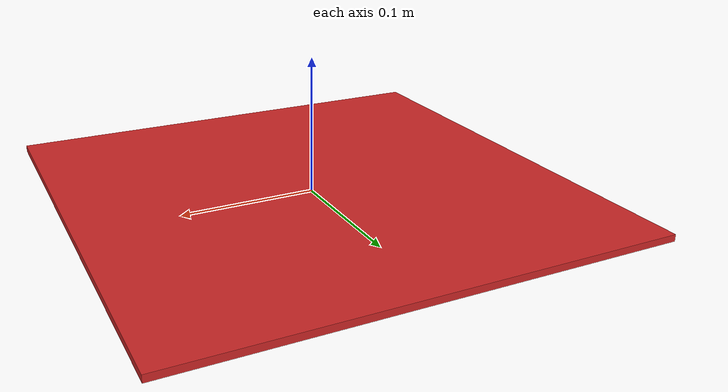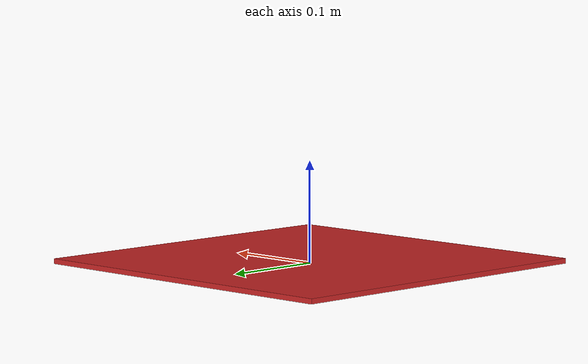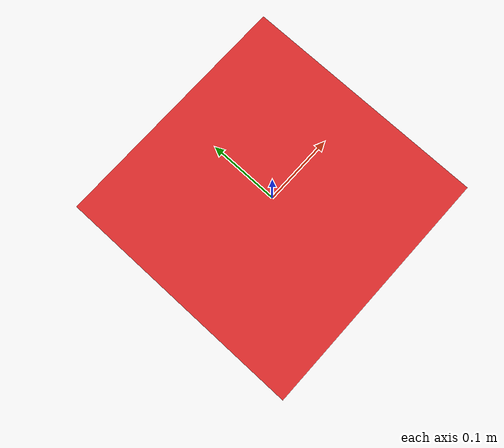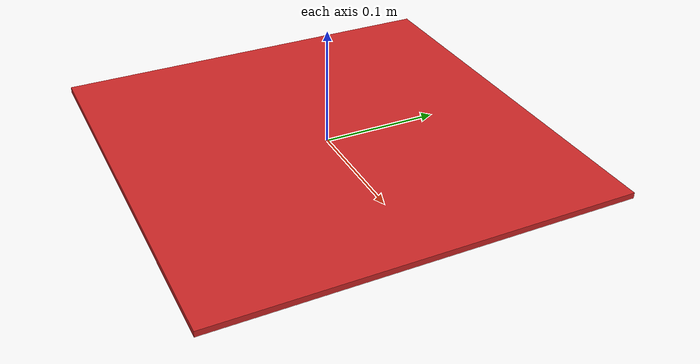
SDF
<?xml version="1.0"?>
<sdf version="1.7">
  <model name="red_cross">
    <static>true</static>
    <link name="link">
      <pose>0 0 0.0025 0 0 0</pose>
      <collision name="collision">
        <geometry>
          <box><size>0.35 0.35 0.005</size></box>
        </geometry>
      </collision>
      <visual name="visual">
        <geometry>
          <box><size>0.35 0.35 0.005</size></box>
        </geometry>
        <material>
          <script>
            <uri>model://red_cross/materials/scripts/</uri>
            <uri>model://red_cross/materials/textures/</uri>
            <name>Mark/RedCross</name>
          </script>
        </material>
        <cast_shadows>true</cast_shadows>
        <receive_shadows>true</receive_shadows>
      </visual>
    </link>
  </model>
</sdf>
